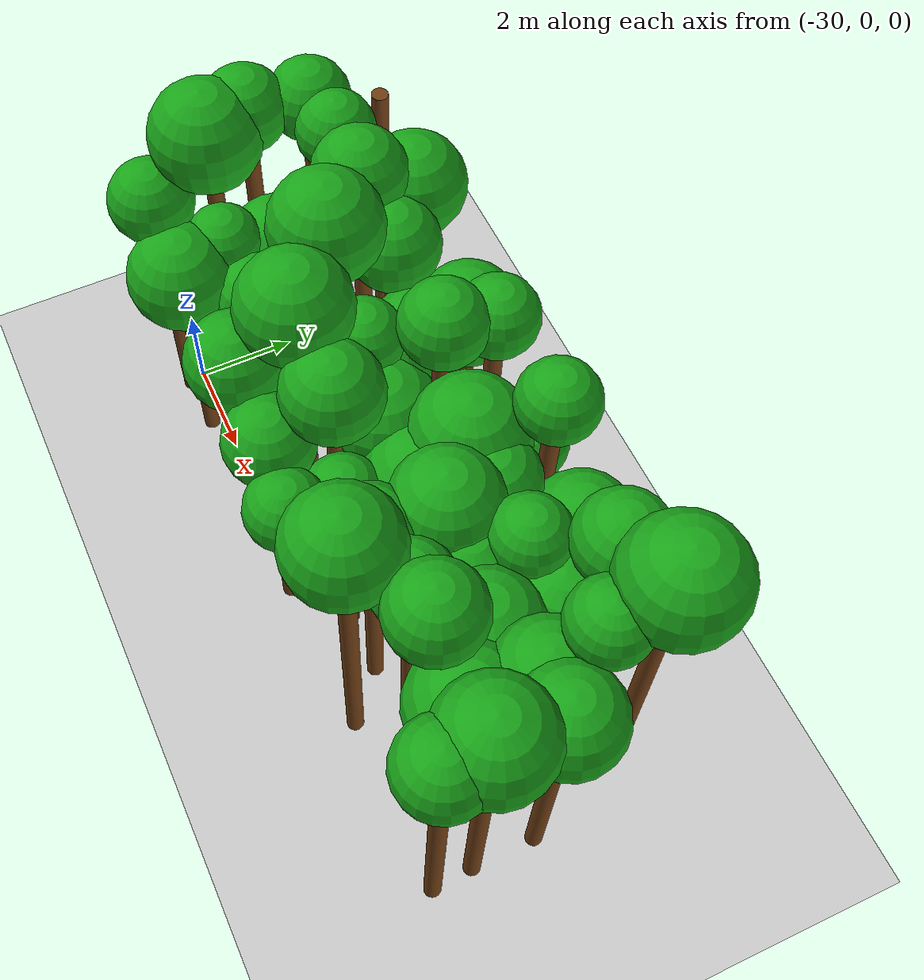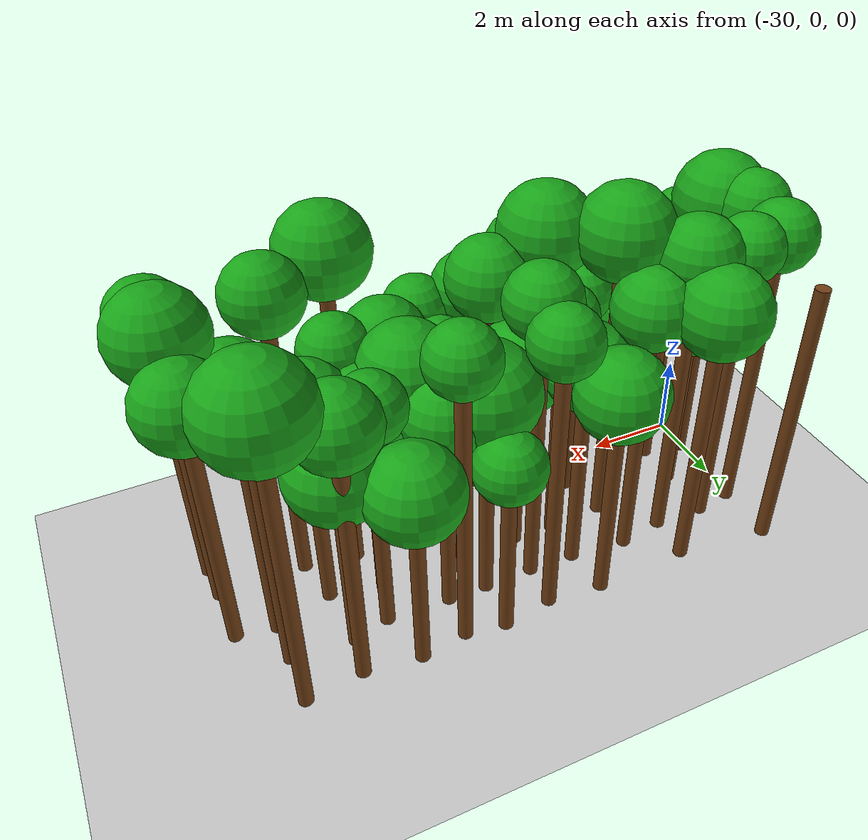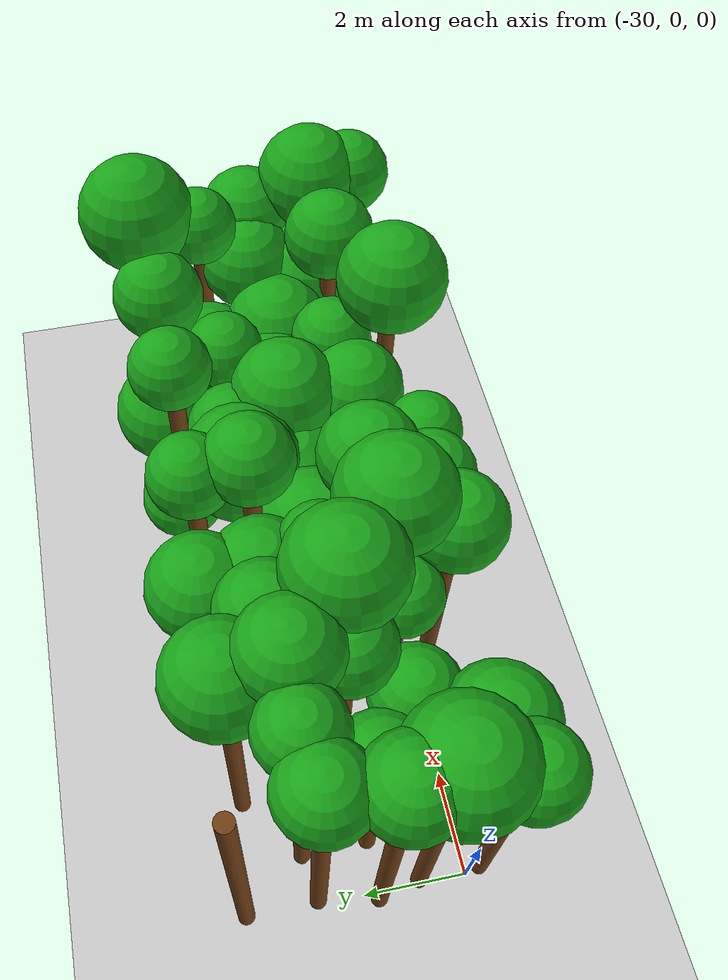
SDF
<sdf version="1.6">
 <world name="forest_world">
  <include><uri>model://sun</uri></include>
  <include><uri>model://ground_plane</uri></include>
  <model name="tree_27_trunk">
   <static>true</static>
   <pose>-29.89 -0.29 2.73 0 0 0</pose>
   <link name="link">
    <collision name="collision">
     <geometry><cylinder><radius>0.16</radius><length>5.46</length></cylinder></geometry>
    </collision>
    <visual name="visual">
     <geometry><cylinder><radius>0.16</radius><length>5.46</length></cylinder></geometry>
     <material><ambient>0.35 0.20 0.05 1</ambient><diffuse>0.45 0.25 0.08 1</diffuse></material>
    </visual>
   </link>
  </model>
  <model name="tree_27_leaf">
   <static>true</static>
   <pose>-29.89 -0.29 5.94 0 0 0</pose>
   <link name="link">
    <collision name="collision"><geometry><sphere><radius>0.80</radius></sphere></geometry></collision>
    <visual name="visual">
     <geometry><sphere><radius>0.80</radius></sphere></geometry>
     <material><ambient>0.05 0.45 0.05 1</ambient><diffuse>0.10 0.65 0.10 1</diffuse></material>
    </visual>
   </link>
  </model>
  <model name="tree_28_trunk">
   <static>true</static>
   <pose>-29.91 0.91 3.22 0 0 0</pose>
   <link name="link">
    <collision name="collision">
     <geometry><cylinder><radius>0.16</radius><length>6.43</length></cylinder></geometry>
    </collision>
    <visual name="visual">
     <geometry><cylinder><radius>0.16</radius><length>6.43</length></cylinder></geometry>
     <material><ambient>0.35 0.20 0.05 1</ambient><diffuse>0.45 0.25 0.08 1</diffuse></material>
    </visual>
   </link>
  </model>
  <model name="tree_28_leaf">
   <static>true</static>
   <pose>-29.91 0.91 7.06 0 0 0</pose>
   <link name="link">
    <collision name="collision"><geometry><sphere><radius>1.04</radius></sphere></geometry></collision>
    <visual name="visual">
     <geometry><sphere><radius>1.04</radius></sphere></geometry>
     <material><ambient>0.05 0.45 0.05 1</ambient><diffuse>0.10 0.65 0.10 1</diffuse></material>
    </visual>
   </link>
  </model>
  <model name="tree_29_trunk">
   <static>true</static>
   <pose>-30.10 1.73 3.36 0 0 0</pose>
   <link name="link">
    <collision name="collision">
     <geometry><cylinder><radius>0.16</radius><length>6.72</length></cylinder></geometry>
    </collision>
    <visual name="visual">
     <geometry><cylinder><radius>0.16</radius><length>6.72</length></cylinder></geometry>
     <material><ambient>0.35 0.20 0.05 1</ambient><diffuse>0.45 0.25 0.08 1</diffuse></material>
    </visual>
   </link>
  </model>
  <model name="tree_29_leaf">
   <static>true</static>
   <pose>-30.10 1.73 7.20 0 0 0</pose>
   <link name="link">
    <collision name="collision"><geometry><sphere><radius>0.80</radius></sphere></geometry></collision>
    <visual name="visual">
     <geometry><sphere><radius>0.80</radius></sphere></geometry>
     <material><ambient>0.05 0.45 0.05 1</ambient><diffuse>0.10 0.65 0.10 1</diffuse></material>
    </visual>
   </link>
  </model>
  <model name="tree_30_trunk">
   <static>true</static>
   <pose>-29.91 2.88 3.34 0 0 0</pose>
   <link name="link">
    <collision name="collision">
     <geometry><cylinder><radius>0.16</radius><length>6.68</length></cylinder></geometry>
    </collision>
    <visual name="visual">
     <geometry><cylinder><radius>0.16</radius><length>6.68</length></cylinder></geometry>
     <material><ambient>0.35 0.20 0.05 1</ambient><diffuse>0.45 0.25 0.08 1</diffuse></material>
    </visual>
   </link>
  </model>
  <model name="tree_30_leaf">
   <static>true</static>
   <pose>-29.91 2.88 7.13 0 0 0</pose>
   <link name="link">
    <collision name="collision"><geometry><sphere><radius>0.77</radius></sphere></geometry></collision>
    <visual name="visual">
     <geometry><sphere><radius>0.77</radius></sphere></geometry>
     <material><ambient>0.05 0.45 0.05 1</ambient><diffuse>0.10 0.65 0.10 1</diffuse></material>
    </visual>
   </link>
  </model>
  <model name="tree_31_trunk">
   <static>true</static>
   <pose>-29.92 4.26 3.33 0 0 0</pose>
   <link name="link">
    <collision name="collision">
     <geometry><cylinder><radius>0.16</radius><length>6.65</length></cylinder></geometry>
    </collision>
    <visual name="visual">
     <geometry><cylinder><radius>0.16</radius><length>6.65</length></cylinder></geometry>
     <material><ambient>0.35 0.20 0.05 1</ambient><diffuse>0.45 0.25 0.08 1</diffuse></material>
    </visual>
   </link>
  </model>
  <model name="tree_82_trunk">
   <static>true</static>
   <pose>-28.77 -0.24 2.21 0 0 0</pose>
   <link name="link">
    <collision name="collision">
     <geometry><cylinder><radius>0.16</radius><length>4.42</length></cylinder></geometry>
    </collision>
    <visual name="visual">
     <geometry><cylinder><radius>0.16</radius><length>4.42</length></cylinder></geometry>
     <material><ambient>0.35 0.20 0.05 1</ambient><diffuse>0.45 0.25 0.08 1</diffuse></material>
    </visual>
   </link>
  </model>
  <model name="tree_82_leaf">
   <static>true</static>
   <pose>-28.77 -0.24 5.02 0 0 0</pose>
   <link name="link">
    <collision name="collision"><geometry><sphere><radius>1.01</radius></sphere></geometry></collision>
    <visual name="visual">
     <geometry><sphere><radius>1.01</radius></sphere></geometry>
     <material><ambient>0.05 0.45 0.05 1</ambient><diffuse>0.10 0.65 0.10 1</diffuse></material>
    </visual>
   </link>
  </model>
  <model name="tree_83_trunk">
   <static>true</static>
   <pose>-28.99 0.70 2.42 0 0 0</pose>
   <link name="link">
    <collision name="collision">
     <geometry><cylinder><radius>0.16</radius><length>4.84</length></cylinder></geometry>
    </collision>
    <visual name="visual">
     <geometry><cylinder><radius>0.16</radius><length>4.84</length></cylinder></geometry>
     <material><ambient>0.35 0.20 0.05 1</ambient><diffuse>0.45 0.25 0.08 1</diffuse></material>
    </visual>
   </link>
  </model>
  <model name="tree_83_leaf">
   <static>true</static>
   <pose>-28.99 0.70 5.27 0 0 0</pose>
   <link name="link">
    <collision name="collision"><geometry><sphere><radius>0.72</radius></sphere></geometry></collision>
    <visual name="visual">
     <geometry><sphere><radius>0.72</radius></sphere></geometry>
     <material><ambient>0.05 0.45 0.05 1</ambient><diffuse>0.10 0.65 0.10 1</diffuse></material>
    </visual>
   </link>
  </model>
  <model name="tree_84_trunk">
   <static>true</static>
   <pose>-29.00 1.72 2.12 0 0 0</pose>
   <link name="link">
    <collision name="collision">
     <geometry><cylinder><radius>0.16</radius><length>4.25</length></cylinder></geometry>
    </collision>
    <visual name="visual">
     <geometry><cylinder><radius>0.16</radius><length>4.25</length></cylinder></geometry>
     <material><ambient>0.35 0.20 0.05 1</ambient><diffuse>0.45 0.25 0.08 1</diffuse></material>
    </visual>
   </link>
  </model>
  <model name="tree_84_leaf">
   <static>true</static>
   <pose>-29.00 1.72 4.78 0 0 0</pose>
   <link name="link">
    <collision name="collision"><geometry><sphere><radius>0.89</radius></sphere></geometry></collision>
    <visual name="visual">
     <geometry><sphere><radius>0.89</radius></sphere></geometry>
     <material><ambient>0.05 0.45 0.05 1</ambient><diffuse>0.10 0.65 0.10 1</diffuse></material>
    </visual>
   </link>
  </model>
  <model name="tree_85_trunk">
   <static>true</static>
   <pose>-29.03 3.02 3.34 0 0 0</pose>
   <link name="link">
    <collision name="collision">
     <geometry><cylinder><radius>0.16</radius><length>6.67</length></cylinder></geometry>
    </collision>
    <visual name="visual">
     <geometry><cylinder><radius>0.16</radius><length>6.67</length></cylinder></geometry>
     <material><ambient>0.35 0.20 0.05 1</ambient><diffuse>0.45 0.25 0.08 1</diffuse></material>
    </visual>
   </link>
  </model>
  <model name="tree_85_leaf">
   <static>true</static>
   <pose>-29.03 3.02 7.12 0 0 0</pose>
   <link name="link">
    <collision name="collision"><geometry><sphere><radius>0.73</radius></sphere></geometry></collision>
    <visual name="visual">
     <geometry><sphere><radius>0.73</radius></sphere></geometry>
     <material><ambient>0.05 0.45 0.05 1</ambient><diffuse>0.10 0.65 0.10 1</diffuse></material>
    </visual>
   </link>
  </model>
  <model name="tree_138_trunk">
   <static>true</static>
   <pose>-27.93 0.91 2.15 0 0 0</pose>
   <link name="link">
    <collision name="collision">
     <geometry><cylinder><radius>0.16</radius><length>4.29</length></cylinder></geometry>
    </collision>
    <visual name="visual">
     <geometry><cylinder><radius>0.16</radius><length>4.29</length></cylinder></geometry>
     <material><ambient>0.35 0.20 0.05 1</ambient><diffuse>0.45 0.25 0.08 1</diffuse></material>
    </visual>
   </link>
  </model>
  <model name="tree_138_leaf">
   <static>true</static>
   <pose>-27.93 0.91 4.79 0 0 0</pose>
   <link name="link">
    <collision name="collision"><geometry><sphere><radius>0.82</radius></sphere></geometry></collision>
    <visual name="visual">
     <geometry><sphere><radius>0.82</radius></sphere></geometry>
     <material><ambient>0.05 0.45 0.05 1</ambient><diffuse>0.10 0.65 0.10 1</diffuse></material>
    </visual>
   </link>
  </model>
  <model name="tree_139_trunk">
   <static>true</static>
   <pose>-27.67 2.04 3.02 0 0 0</pose>
   <link name="link">
    <collision name="collision">
     <geometry><cylinder><radius>0.16</radius><length>6.03</length></cylinder></geometry>
    </collision>
    <visual name="visual">
     <geometry><cylinder><radius>0.16</radius><length>6.03</length></cylinder></geometry>
     <material><ambient>0.35 0.20 0.05 1</ambient><diffuse>0.45 0.25 0.08 1</diffuse></material>
    </visual>
   </link>
  </model>
  <model name="tree_139_leaf">
   <static>true</static>
   <pose>-27.67 2.04 6.51 0 0 0</pose>
   <link name="link">
    <collision name="collision"><geometry><sphere><radius>0.80</radius></sphere></geometry></collision>
    <visual name="visual">
     <geometry><sphere><radius>0.80</radius></sphere></geometry>
     <material><ambient>0.05 0.45 0.05 1</ambient><diffuse>0.10 0.65 0.10 1</diffuse></material>
    </visual>
   </link>
  </model>
  <model name="tree_140_trunk">
   <static>true</static>
   <pose>-27.86 2.97 3.34 0 0 0</pose>
   <link name="link">
    <collision name="collision">
     <geometry><cylinder><radius>0.16</radius><length>6.68</length></cylinder></geometry>
    </collision>
    <visual name="visual">
     <geometry><cylinder><radius>0.16</radius><length>6.68</length></cylinder></geometry>
     <material><ambient>0.35 0.20 0.05 1</ambient><diffuse>0.45 0.25 0.08 1</diffuse></material>
    </visual>
   </link>
  </model>
  <model name="tree_140_leaf">
   <static>true</static>
   <pose>-27.86 2.97 7.20 0 0 0</pose>
   <link name="link">
    <collision name="collision"><geometry><sphere><radius>0.87</radius></sphere></geometry></collision>
    <visual name="visual">
     <geometry><sphere><radius>0.87</radius></sphere></geometry>
     <material><ambient>0.05 0.45 0.05 1</ambient><diffuse>0.10 0.65 0.10 1</diffuse></material>
    </visual>
   </link>
  </model>
  <model name="tree_141_trunk">
   <static>true</static>
   <pose>-27.81 3.98 2.98 0 0 0</pose>
   <link name="link">
    <collision name="collision">
     <geometry><cylinder><radius>0.16</radius><length>5.96</length></cylinder></geometry>
    </collision>
    <visual name="visual">
     <geometry><cylinder><radius>0.16</radius><length>5.96</length></cylinder></geometry>
     <material><ambient>0.35 0.20 0.05 1</ambient><diffuse>0.45 0.25 0.08 1</diffuse></material>
    </visual>
   </link>
  </model>
  <model name="tree_141_leaf">
   <static>true</static>
   <pose>-27.81 3.98 6.54 0 0 0</pose>
   <link name="link">
    <collision name="collision"><geometry><sphere><radius>0.96</radius></sphere></geometry></collision>
    <visual name="visual">
     <geometry><sphere><radius>0.96</radius></sphere></geometry>
     <material><ambient>0.05 0.45 0.05 1</ambient><diffuse>0.10 0.65 0.10 1</diffuse></material>
    </visual>
   </link>
  </model>
  <model name="tree_193_trunk">
   <static>true</static>
   <pose>-26.57 0.86 2.58 0 0 0</pose>
   <link name="link">
    <collision name="collision">
     <geometry><cylinder><radius>0.16</radius><length>5.17</length></cylinder></geometry>
    </collision>
    <visual name="visual">
     <geometry><cylinder><radius>0.16</radius><length>5.17</length></cylinder></geometry>
     <material><ambient>0.35 0.20 0.05 1</ambient><diffuse>0.45 0.25 0.08 1</diffuse></material>
    </visual>
   </link>
  </model>
  <model name="tree_193_leaf">
   <static>true</static>
   <pose>-26.57 0.86 5.61 0 0 0</pose>
   <link name="link">
    <collision name="collision"><geometry><sphere><radius>0.73</radius></sphere></geometry></collision>
    <visual name="visual">
     <geometry><sphere><radius>0.73</radius></sphere></geometry>
     <material><ambient>0.05 0.45 0.05 1</ambient><diffuse>0.10 0.65 0.10 1</diffuse></material>
    </visual>
   </link>
  </model>
  <model name="tree_194_trunk">
   <static>true</static>
   <pose>-26.84 1.92 3.42 0 0 0</pose>
   <link name="link">
    <collision name="collision">
     <geometry><cylinder><radius>0.16</radius><length>6.84</length></cylinder></geometry>
    </collision>
    <visual name="visual">
     <geometry><cylinder><radius>0.16</radius><length>6.84</length></cylinder></geometry>
     <material><ambient>0.35 0.20 0.05 1</ambient><diffuse>0.45 0.25 0.08 1</diffuse></material>
    </visual>
   </link>
  </model>
  <model name="tree_194_leaf">
   <static>true</static>
   <pose>-26.84 1.92 7.46 0 0 0</pose>
   <link name="link">
    <collision name="collision"><geometry><sphere><radius>1.02</radius></sphere></geometry></collision>
    <visual name="visual">
     <geometry><sphere><radius>1.02</radius></sphere></geometry>
     <material><ambient>0.05 0.45 0.05 1</ambient><diffuse>0.10 0.65 0.10 1</diffuse></material>
    </visual>
   </link>
  </model>
  <model name="tree_195_trunk">
   <static>true</static>
   <pose>-26.82 3.13 2.94 0 0 0</pose>
   <link name="link">
    <collision name="collision">
     <geometry><cylinder><radius>0.16</radius><length>5.89</length></cylinder></geometry>
    </collision>
    <visual name="visual">
     <geometry><cylinder><radius>0.16</radius><length>5.89</length></cylinder></geometry>
     <material><ambient>0.35 0.20 0.05 1</ambient><diffuse>0.45 0.25 0.08 1</diffuse></material>
    </visual>
   </link>
  </model>
  <model name="tree_195_leaf">
   <static>true</static>
   <pose>-26.82 3.13 6.41 0 0 0</pose>
   <link name="link">
    <collision name="collision"><geometry><sphere><radius>0.86</radius></sphere></geometry></collision>
    <visual name="visual">
     <geometry><sphere><radius>0.86</radius></sphere></geometry>
     <material><ambient>0.05 0.45 0.05 1</ambient><diffuse>0.10 0.65 0.10 1</diffuse></material>
    </visual>
   </link>
  </model>
  <model name="tree_247_trunk">
   <static>true</static>
   <pose>-25.76 -0.22 2.87 0 0 0</pose>
   <link name="link">
    <collision name="collision">
     <geometry><cylinder><radius>0.16</radius><length>5.74</length></cylinder></geometry>
    </collision>
    <visual name="visual">
     <geometry><cylinder><radius>0.16</radius><length>5.74</length></cylinder></geometry>
     <material><ambient>0.35 0.20 0.05 1</ambient><diffuse>0.45 0.25 0.08 1</diffuse></material>
    </visual>
   </link>
  </model>
  <model name="tree_247_leaf">
   <static>true</static>
   <pose>-25.76 -0.22 6.26 0 0 0</pose>
   <link name="link">
    <collision name="collision"><geometry><sphere><radius>0.88</radius></sphere></geometry></collision>
    <visual name="visual">
     <geometry><sphere><radius>0.88</radius></sphere></geometry>
     <material><ambient>0.05 0.45 0.05 1</ambient><diffuse>0.10 0.65 0.10 1</diffuse></material>
    </visual>
   </link>
  </model>
  <model name="tree_248_trunk">
   <static>true</static>
   <pose>-25.67 0.86 3.33 0 0 0</pose>
   <link name="link">
    <collision name="collision">
     <geometry><cylinder><radius>0.16</radius><length>6.66</length></cylinder></geometry>
    </collision>
    <visual name="visual">
     <geometry><cylinder><radius>0.16</radius><length>6.66</length></cylinder></geometry>
     <material><ambient>0.35 0.20 0.05 1</ambient><diffuse>0.45 0.25 0.08 1</diffuse></material>
    </visual>
   </link>
  </model>
  <model name="tree_248_leaf">
   <static>true</static>
   <pose>-25.67 0.86 7.27 0 0 0</pose>
   <link name="link">
    <collision name="collision"><geometry><sphere><radius>1.02</radius></sphere></geometry></collision>
    <visual name="visual">
     <geometry><sphere><radius>1.02</radius></sphere></geometry>
     <material><ambient>0.05 0.45 0.05 1</ambient><diffuse>0.10 0.65 0.10 1</diffuse></material>
    </visual>
   </link>
  </model>
  <model name="tree_249_trunk">
   <static>true</static>
   <pose>-25.53 2.00 2.74 0 0 0</pose>
   <link name="link">
    <collision name="collision">
     <geometry><cylinder><radius>0.16</radius><length>5.48</length></cylinder></geometry>
    </collision>
    <visual name="visual">
     <geometry><cylinder><radius>0.16</radius><length>5.48</length></cylinder></geometry>
     <material><ambient>0.35 0.20 0.05 1</ambient><diffuse>0.45 0.25 0.08 1</diffuse></material>
    </visual>
   </link>
  </model>
  <model name="tree_249_leaf">
   <static>true</static>
   <pose>-25.53 2.00 5.92 0 0 0</pose>
   <link name="link">
    <collision name="collision"><geometry><sphere><radius>0.73</radius></sphere></geometry></collision>
    <visual name="visual">
     <geometry><sphere><radius>0.73</radius></sphere></geometry>
     <material><ambient>0.05 0.45 0.05 1</ambient><diffuse>0.10 0.65 0.10 1</diffuse></material>
    </visual>
   </link>
  </model>
  <model name="tree_250_trunk">
   <static>true</static>
   <pose>-25.51 3.00 2.41 0 0 0</pose>
   <link name="link">
    <collision name="collision">
     <geometry><cylinder><radius>0.16</radius><length>4.81</length></cylinder></geometry>
    </collision>
    <visual name="visual">
     <geometry><cylinder><radius>0.16</radius><length>4.81</length></cylinder></geometry>
     <material><ambient>0.35 0.20 0.05 1</ambient><diffuse>0.45 0.25 0.08 1</diffuse></material>
    </visual>
   </link>
  </model>
  <model name="tree_250_leaf">
   <static>true</static>
   <pose>-25.51 3.00 5.37 0 0 0</pose>
   <link name="link">
    <collision name="collision"><geometry><sphere><radius>0.93</radius></sphere></geometry></collision>
    <visual name="visual">
     <geometry><sphere><radius>0.93</radius></sphere></geometry>
     <material><ambient>0.05 0.45 0.05 1</ambient><diffuse>0.10 0.65 0.10 1</diffuse></material>
    </visual>
   </link>
  </model>
  <model name="tree_251_trunk">
   <static>true</static>
   <pose>-25.64 4.05 2.39 0 0 0</pose>
   <link name="link">
    <collision name="collision">
     <geometry><cylinder><radius>0.16</radius><length>4.77</length></cylinder></geometry>
    </collision>
    <visual name="visual">
     <geometry><cylinder><radius>0.16</radius><length>4.77</length></cylinder></geometry>
     <material><ambient>0.35 0.20 0.05 1</ambient><diffuse>0.45 0.25 0.08 1</diffuse></material>
    </visual>
   </link>
  </model>
  <model name="tree_251_leaf">
   <static>true</static>
   <pose>-25.64 4.05 5.35 0 0 0</pose>
   <link name="link">
    <collision name="collision"><geometry><sphere><radius>0.96</radius></sphere></geometry></collision>
    <visual name="visual">
     <geometry><sphere><radius>0.96</radius></sphere></geometry>
     <material><ambient>0.05 0.45 0.05 1</ambient><diffuse>0.10 0.65 0.10 1</diffuse></material>
    </visual>
   </link>
  </model>
  <model name="tree_302_trunk">
   <static>true</static>
   <pose>-24.44 -0.19 2.59 0 0 0</pose>
   <link name="link">
    <collision name="collision">
     <geometry><cylinder><radius>0.16</radius><length>5.19</length></cylinder></geometry>
    </collision>
    <visual name="visual">
     <geometry><cylinder><radius>0.16</radius><length>5.19</length></cylinder></geometry>
     <material><ambient>0.35 0.20 0.05 1</ambient><diffuse>0.45 0.25 0.08 1</diffuse></material>
    </visual>
   </link>
  </model>
  <model name="tree_302_leaf">
   <static>true</static>
   <pose>-24.44 -0.19 5.68 0 0 0</pose>
   <link name="link">
    <collision name="collision"><geometry><sphere><radius>0.82</radius></sphere></geometry></collision>
    <visual name="visual">
     <geometry><sphere><radius>0.82</radius></sphere></geometry>
     <material><ambient>0.05 0.45 0.05 1</ambient><diffuse>0.10 0.65 0.10 1</diffuse></material>
    </visual>
   </link>
  </model>
  <model name="tree_303_trunk">
   <static>true</static>
   <pose>-24.36 0.94 3.00 0 0 0</pose>
   <link name="link">
    <collision name="collision">
     <geometry><cylinder><radius>0.16</radius><length>6.01</length></cylinder></geometry>
    </collision>
    <visual name="visual">
     <geometry><cylinder><radius>0.16</radius><length>6.01</length></cylinder></geometry>
     <material><ambient>0.35 0.20 0.05 1</ambient><diffuse>0.45 0.25 0.08 1</diffuse></material>
    </visual>
   </link>
  </model>
  <model name="tree_303_leaf">
   <static>true</static>
   <pose>-24.36 0.94 6.54 0 0 0</pose>
   <link name="link">
    <collision name="collision"><geometry><sphere><radius>0.90</radius></sphere></geometry></collision>
    <visual name="visual">
     <geometry><sphere><radius>0.90</radius></sphere></geometry>
     <material><ambient>0.05 0.45 0.05 1</ambient><diffuse>0.10 0.65 0.10 1</diffuse></material>
    </visual>
   </link>
  </model>
  <model name="tree_304_trunk">
   <static>true</static>
   <pose>-24.58 1.95 2.17 0 0 0</pose>
   <link name="link">
    <collision name="collision">
     <geometry><cylinder><radius>0.16</radius><length>4.34</length></cylinder></geometry>
    </collision>
    <visual name="visual">
     <geometry><cylinder><radius>0.16</radius><length>4.34</length></cylinder></geometry>
     <material><ambient>0.35 0.20 0.05 1</ambient><diffuse>0.45 0.25 0.08 1</diffuse></material>
    </visual>
   </link>
  </model>
  <model name="tree_304_leaf">
   <static>true</static>
   <pose>-24.58 1.95 4.96 0 0 0</pose>
   <link name="link">
    <collision name="collision"><geometry><sphere><radius>1.03</radius></sphere></geometry></collision>
    <visual name="visual">
     <geometry><sphere><radius>1.03</radius></sphere></geometry>
     <material><ambient>0.05 0.45 0.05 1</ambient><diffuse>0.10 0.65 0.10 1</diffuse></material>
    </visual>
   </link>
  </model>
  <model name="tree_305_trunk">
   <static>true</static>
   <pose>-24.47 2.96 3.32 0 0 0</pose>
   <link name="link">
    <collision name="collision">
     <geometry><cylinder><radius>0.16</radius><length>6.65</length></cylinder></geometry>
    </collision>
    <visual name="visual">
     <geometry><cylinder><radius>0.16</radius><length>6.65</length></cylinder></geometry>
     <material><ambient>0.35 0.20 0.05 1</ambient><diffuse>0.45 0.25 0.08 1</diffuse></material>
    </visual>
   </link>
  </model>
  <model name="tree_305_leaf">
   <static>true</static>
   <pose>-24.47 2.96 7.12 0 0 0</pose>
   <link name="link">
    <collision name="collision"><geometry><sphere><radius>0.78</radius></sphere></geometry></collision>
    <visual name="visual">
     <geometry><sphere><radius>0.78</radius></sphere></geometry>
     <material><ambient>0.05 0.45 0.05 1</ambient><diffuse>0.10 0.65 0.10 1</diffuse></material>
    </visual>
   </link>
  </model>
  <model name="tree_306_trunk">
   <static>true</static>
   <pose>-24.41 3.92 3.20 0 0 0</pose>
   <link name="link">
    <collision name="collision">
     <geometry><cylinder><radius>0.16</radius><length>6.41</length></cylinder></geometry>
    </collision>
    <visual name="visual">
     <geometry><cylinder><radius>0.16</radius><length>6.41</length></cylinder></geometry>
     <material><ambient>0.35 0.20 0.05 1</ambient><diffuse>0.45 0.25 0.08 1</diffuse></material>
    </visual>
   </link>
  </model>
  <model name="tree_306_leaf">
   <static>true</static>
   <pose>-24.41 3.92 6.85 0 0 0</pose>
   <link name="link">
    <collision name="collision"><geometry><sphere><radius>0.73</radius></sphere></geometry></collision>
    <visual name="visual">
     <geometry><sphere><radius>0.73</radius></sphere></geometry>
     <material><ambient>0.05 0.45 0.05 1</ambient><diffuse>0.10 0.65 0.10 1</diffuse></material>
    </visual>
   </link>
  </model>
  <model name="tree_357_leaf">
   <static>true</static>
   <pose>-23.30 -0.38 5.38 0 0 0</pose>
   <link name="link">
    <collision name="collision"><geometry><sphere><radius>0.73</radius></sphere></geometry></collision>
    <visual name="visual">
     <geometry><sphere><radius>0.73</radius></sphere></geometry>
     <material><ambient>0.05 0.45 0.05 1</ambient><diffuse>0.10 0.65 0.10 1</diffuse></material>
    </visual>
   </link>
  </model>
  <model name="tree_358_trunk">
   <static>true</static>
   <pose>-23.40 0.67 2.24 0 0 0</pose>
   <link name="link">
    <collision name="collision">
     <geometry><cylinder><radius>0.16</radius><length>4.48</length></cylinder></geometry>
    </collision>
    <visual name="visual">
     <geometry><cylinder><radius>0.16</radius><length>4.48</length></cylinder></geometry>
     <material><ambient>0.35 0.20 0.05 1</ambient><diffuse>0.45 0.25 0.08 1</diffuse></material>
    </visual>
   </link>
  </model>
  <model name="tree_358_leaf">
   <static>true</static>
   <pose>-23.40 0.67 4.92 0 0 0</pose>
   <link name="link">
    <collision name="collision"><geometry><sphere><radius>0.73</radius></sphere></geometry></collision>
    <visual name="visual">
     <geometry><sphere><radius>0.73</radius></sphere></geometry>
     <material><ambient>0.05 0.45 0.05 1</ambient><diffuse>0.10 0.65 0.10 1</diffuse></material>
    </visual>
   </link>
  </model>
  <model name="tree_359_trunk">
   <static>true</static>
   <pose>-23.23 2.05 2.03 0 0 0</pose>
   <link name="link">
    <collision name="collision">
     <geometry><cylinder><radius>0.16</radius><length>4.07</length></cylinder></geometry>
    </collision>
    <visual name="visual">
     <geometry><cylinder><radius>0.16</radius><length>4.07</length></cylinder></geometry>
     <material><ambient>0.35 0.20 0.05 1</ambient><diffuse>0.45 0.25 0.08 1</diffuse></material>
    </visual>
   </link>
  </model>
  <model name="tree_359_leaf">
   <static>true</static>
   <pose>-23.23 2.05 4.71 0 0 0</pose>
   <link name="link">
    <collision name="collision"><geometry><sphere><radius>1.07</radius></sphere></geometry></collision>
    <visual name="visual">
     <geometry><sphere><radius>1.07</radius></sphere></geometry>
     <material><ambient>0.05 0.45 0.05 1</ambient><diffuse>0.10 0.65 0.10 1</diffuse></material>
    </visual>
   </link>
  </model>
  <model name="tree_360_trunk">
   <static>true</static>
   <pose>-23.35 2.97 2.37 0 0 0</pose>
   <link name="link">
    <collision name="collision">
     <geometry><cylinder><radius>0.16</radius><length>4.74</length></cylinder></geometry>
    </collision>
    <visual name="visual">
     <geometry><cylinder><radius>0.16</radius><length>4.74</length></cylinder></geometry>
     <material><ambient>0.35 0.20 0.05 1</ambient><diffuse>0.45 0.25 0.08 1</diffuse></material>
    </visual>
   </link>
  </model>
  <model name="tree_360_leaf">
   <static>true</static>
   <pose>-23.35 2.97 5.39 0 0 0</pose>
   <link name="link">
    <collision name="collision"><geometry><sphere><radius>1.09</radius></sphere></geometry></collision>
    <visual name="visual">
     <geometry><sphere><radius>1.09</radius></sphere></geometry>
     <material><ambient>0.05 0.45 0.05 1</ambient><diffuse>0.10 0.65 0.10 1</diffuse></material>
    </visual>
   </link>
  </model>
  <model name="tree_361_trunk">
   <static>true</static>
   <pose>-23.28 4.09 2.01 0 0 0</pose>
   <link name="link">
    <collision name="collision">
     <geometry><cylinder><radius>0.16</radius><length>4.03</length></cylinder></geometry>
    </collision>
    <visual name="visual">
     <geometry><cylinder><radius>0.16</radius><length>4.03</length></cylinder></geometry>
     <material><ambient>0.35 0.20 0.05 1</ambient><diffuse>0.45 0.25 0.08 1</diffuse></material>
    </visual>
   </link>
  </model>
  <model name="tree_361_leaf">
   <static>true</static>
   <pose>-23.28 4.09 4.48 0 0 0</pose>
   <link name="link">
    <collision name="collision"><geometry><sphere><radius>0.75</radius></sphere></geometry></collision>
    <visual name="visual">
     <geometry><sphere><radius>0.75</radius></sphere></geometry>
     <material><ambient>0.05 0.45 0.05 1</ambient><diffuse>0.10 0.65 0.10 1</diffuse></material>
    </visual>
   </link>
  </model>
  <model name="tree_413_trunk">
   <static>true</static>
   <pose>-22.20 0.65 2.48 0 0 0</pose>
   <link name="link">
    <collision name="collision">
     <geometry><cylinder><radius>0.16</radius><length>4.96</length></cylinder></geometry>
    </collision>
    <visual name="visual">
     <geometry><cylinder><radius>0.16</radius><length>4.96</length></cylinder></geometry>
     <material><ambient>0.35 0.20 0.05 1</ambient><diffuse>0.45 0.25 0.08 1</diffuse></material>
    </visual>
   </link>
  </model>
  <model name="tree_413_leaf">
   <static>true</static>
   <pose>-22.20 0.65 5.51 0 0 0</pose>
   <link name="link">
    <collision name="collision"><geometry><sphere><radius>0.92</radius></sphere></geometry></collision>
    <visual name="visual">
     <geometry><sphere><radius>0.92</radius></sphere></geometry>
     <material><ambient>0.05 0.45 0.05 1</ambient><diffuse>0.10 0.65 0.10 1</diffuse></material>
    </visual>
   </link>
  </model>
  <model name="tree_414_trunk">
   <static>true</static>
   <pose>-22.16 1.96 2.54 0 0 0</pose>
   <link name="link">
    <collision name="collision">
     <geometry><cylinder><radius>0.16</radius><length>5.09</length></cylinder></geometry>
    </collision>
    <visual name="visual">
     <geometry><cylinder><radius>0.16</radius><length>5.09</length></cylinder></geometry>
     <material><ambient>0.35 0.20 0.05 1</ambient><diffuse>0.45 0.25 0.08 1</diffuse></material>
    </visual>
   </link>
  </model>
  <model name="tree_414_leaf">
   <static>true</static>
   <pose>-22.16 1.96 5.69 0 0 0</pose>
   <link name="link">
    <collision name="collision"><geometry><sphere><radius>1.00</radius></sphere></geometry></collision>
    <visual name="visual">
     <geometry><sphere><radius>1.00</radius></sphere></geometry>
     <material><ambient>0.05 0.45 0.05 1</ambient><diffuse>0.10 0.65 0.10 1</diffuse></material>
    </visual>
   </link>
  </model>
  <model name="tree_415_trunk">
   <static>true</static>
   <pose>-22.47 2.96 2.34 0 0 0</pose>
   <link name="link">
    <collision name="collision">
     <geometry><cylinder><radius>0.16</radius><length>4.67</length></cylinder></geometry>
    </collision>
    <visual name="visual">
     <geometry><cylinder><radius>0.16</radius><length>4.67</length></cylinder></geometry>
     <material><ambient>0.35 0.20 0.05 1</ambient><diffuse>0.45 0.25 0.08 1</diffuse></material>
    </visual>
   </link>
  </model>
  <model name="tree_415_leaf">
   <static>true</static>
   <pose>-22.47 2.96 5.20 0 0 0</pose>
   <link name="link">
    <collision name="collision"><geometry><sphere><radius>0.88</radius></sphere></geometry></collision>
    <visual name="visual">
     <geometry><sphere><radius>0.88</radius></sphere></geometry>
     <material><ambient>0.05 0.45 0.05 1</ambient><diffuse>0.10 0.65 0.10 1</diffuse></material>
    </visual>
   </link>
  </model>
  <model name="tree_416_trunk">
   <static>true</static>
   <pose>-22.40 3.95 3.34 0 0 0</pose>
   <link name="link">
    <collision name="collision">
     <geometry><cylinder><radius>0.16</radius><length>6.69</length></cylinder></geometry>
    </collision>
    <visual name="visual">
     <geometry><cylinder><radius>0.16</radius><length>6.69</length></cylinder></geometry>
     <material><ambient>0.35 0.20 0.05 1</ambient><diffuse>0.45 0.25 0.08 1</diffuse></material>
    </visual>
   </link>
  </model>
  <model name="tree_416_leaf">
   <static>true</static>
   <pose>-22.40 3.95 7.12 0 0 0</pose>
   <link name="link">
    <collision name="collision"><geometry><sphere><radius>0.72</radius></sphere></geometry></collision>
    <visual name="visual">
     <geometry><sphere><radius>0.72</radius></sphere></geometry>
     <material><ambient>0.05 0.45 0.05 1</ambient><diffuse>0.10 0.65 0.10 1</diffuse></material>
    </visual>
   </link>
  </model>
  <model name="tree_467_trunk">
   <static>true</static>
   <pose>-21.35 -0.14 3.38 0 0 0</pose>
   <link name="link">
    <collision name="collision">
     <geometry><cylinder><radius>0.16</radius><length>6.77</length></cylinder></geometry>
    </collision>
    <visual name="visual">
     <geometry><cylinder><radius>0.16</radius><length>6.77</length></cylinder></geometry>
     <material><ambient>0.35 0.20 0.05 1</ambient><diffuse>0.45 0.25 0.08 1</diffuse></material>
    </visual>
   </link>
  </model>
  <model name="tree_467_leaf">
   <static>true</static>
   <pose>-21.35 -0.14 7.36 0 0 0</pose>
   <link name="link">
    <collision name="collision"><geometry><sphere><radius>0.99</radius></sphere></geometry></collision>
    <visual name="visual">
     <geometry><sphere><radius>0.99</radius></sphere></geometry>
     <material><ambient>0.05 0.45 0.05 1</ambient><diffuse>0.10 0.65 0.10 1</diffuse></material>
    </visual>
   </link>
  </model>
  <model name="tree_468_trunk">
   <static>true</static>
   <pose>-21.10 0.86 2.64 0 0 0</pose>
   <link name="link">
    <collision name="collision">
     <geometry><cylinder><radius>0.16</radius><length>5.28</length></cylinder></geometry>
    </collision>
    <visual name="visual">
     <geometry><cylinder><radius>0.16</radius><length>5.28</length></cylinder></geometry>
     <material><ambient>0.35 0.20 0.05 1</ambient><diffuse>0.45 0.25 0.08 1</diffuse></material>
    </visual>
   </link>
  </model>
  <model name="tree_468_leaf">
   <static>true</static>
   <pose>-21.10 0.86 5.74 0 0 0</pose>
   <link name="link">
    <collision name="collision"><geometry><sphere><radius>0.76</radius></sphere></geometry></collision>
    <visual name="visual">
     <geometry><sphere><radius>0.76</radius></sphere></geometry>
     <material><ambient>0.05 0.45 0.05 1</ambient><diffuse>0.10 0.65 0.10 1</diffuse></material>
    </visual>
   </link>
  </model>
  <model name="tree_469_trunk">
   <static>true</static>
   <pose>-21.32 1.99 2.28 0 0 0</pose>
   <link name="link">
    <collision name="collision">
     <geometry><cylinder><radius>0.16</radius><length>4.55</length></cylinder></geometry>
    </collision>
    <visual name="visual">
     <geometry><cylinder><radius>0.16</radius><length>4.55</length></cylinder></geometry>
     <material><ambient>0.35 0.20 0.05 1</ambient><diffuse>0.45 0.25 0.08 1</diffuse></material>
    </visual>
   </link>
  </model>
  <model name="tree_469_leaf">
   <static>true</static>
   <pose>-21.32 1.99 5.09 0 0 0</pose>
   <link name="link">
    <collision name="collision"><geometry><sphere><radius>0.89</radius></sphere></geometry></collision>
    <visual name="visual">
     <geometry><sphere><radius>0.89</radius></sphere></geometry>
     <material><ambient>0.05 0.45 0.05 1</ambient><diffuse>0.10 0.65 0.10 1</diffuse></material>
    </visual>
   </link>
  </model>
  <model name="tree_470_trunk">
   <static>true</static>
   <pose>-21.06 2.89 2.68 0 0 0</pose>
   <link name="link">
    <collision name="collision">
     <geometry><cylinder><radius>0.16</radius><length>5.36</length></cylinder></geometry>
    </collision>
    <visual name="visual">
     <geometry><cylinder><radius>0.16</radius><length>5.36</length></cylinder></geometry>
     <material><ambient>0.35 0.20 0.05 1</ambient><diffuse>0.45 0.25 0.08 1</diffuse></material>
    </visual>
   </link>
  </model>
  <model name="tree_470_leaf">
   <static>true</static>
   <pose>-21.06 2.89 5.79 0 0 0</pose>
   <link name="link">
    <collision name="collision"><geometry><sphere><radius>0.72</radius></sphere></geometry></collision>
    <visual name="visual">
     <geometry><sphere><radius>0.72</radius></sphere></geometry>
     <material><ambient>0.05 0.45 0.05 1</ambient><diffuse>0.10 0.65 0.10 1</diffuse></material>
    </visual>
   </link>
  </model>
  <model name="tree_471_trunk">
   <static>true</static>
   <pose>-21.36 4.10 2.02 0 0 0</pose>
   <link name="link">
    <collision name="collision">
     <geometry><cylinder><radius>0.16</radius><length>4.04</length></cylinder></geometry>
    </collision>
    <visual name="visual">
     <geometry><cylinder><radius>0.16</radius><length>4.04</length></cylinder></geometry>
     <material><ambient>0.35 0.20 0.05 1</ambient><diffuse>0.45 0.25 0.08 1</diffuse></material>
    </visual>
   </link>
  </model>
  <model name="tree_471_leaf">
   <static>true</static>
   <pose>-21.36 4.10 4.63 0 0 0</pose>
   <link name="link">
    <collision name="collision"><geometry><sphere><radius>0.99</radius></sphere></geometry></collision>
    <visual name="visual">
     <geometry><sphere><radius>0.99</radius></sphere></geometry>
     <material><ambient>0.05 0.45 0.05 1</ambient><diffuse>0.10 0.65 0.10 1</diffuse></material>
    </visual>
   </link>
  </model>
  <model name="tree_523_trunk">
   <static>true</static>
   <pose>-19.93 0.68 3.35 0 0 0</pose>
   <link name="link">
    <collision name="collision">
     <geometry><cylinder><radius>0.16</radius><length>6.71</length></cylinder></geometry>
    </collision>
    <visual name="visual">
     <geometry><cylinder><radius>0.16</radius><length>6.71</length></cylinder></geometry>
     <material><ambient>0.35 0.20 0.05 1</ambient><diffuse>0.45 0.25 0.08 1</diffuse></material>
    </visual>
   </link>
  </model>
  <model name="tree_523_leaf">
   <static>true</static>
   <pose>-19.93 0.68 7.20 0 0 0</pose>
   <link name="link">
    <collision name="collision"><geometry><sphere><radius>0.82</radius></sphere></geometry></collision>
    <visual name="visual">
     <geometry><sphere><radius>0.82</radius></sphere></geometry>
     <material><ambient>0.05 0.45 0.05 1</ambient><diffuse>0.10 0.65 0.10 1</diffuse></material>
    </visual>
   </link>
  </model>
  <model name="tree_524_trunk">
   <static>true</static>
   <pose>-20.16 1.72 2.31 0 0 0</pose>
   <link name="link">
    <collision name="collision">
     <geometry><cylinder><radius>0.16</radius><length>4.62</length></cylinder></geometry>
    </collision>
    <visual name="visual">
     <geometry><cylinder><radius>0.16</radius><length>4.62</length></cylinder></geometry>
     <material><ambient>0.35 0.20 0.05 1</ambient><diffuse>0.45 0.25 0.08 1</diffuse></material>
    </visual>
   </link>
  </model>
  <model name="tree_524_leaf">
   <static>true</static>
   <pose>-20.16 1.72 5.22 0 0 0</pose>
   <link name="link">
    <collision name="collision"><geometry><sphere><radius>1.00</radius></sphere></geometry></collision>
    <visual name="visual">
     <geometry><sphere><radius>1.00</radius></sphere></geometry>
     <material><ambient>0.05 0.45 0.05 1</ambient><diffuse>0.10 0.65 0.10 1</diffuse></material>
    </visual>
   </link>
  </model>
  <model name="tree_525_trunk">
   <static>true</static>
   <pose>-20.26 3.12 2.08 0 0 0</pose>
   <link name="link">
    <collision name="collision">
     <geometry><cylinder><radius>0.16</radius><length>4.15</length></cylinder></geometry>
    </collision>
    <visual name="visual">
     <geometry><cylinder><radius>0.16</radius><length>4.15</length></cylinder></geometry>
     <material><ambient>0.35 0.20 0.05 1</ambient><diffuse>0.45 0.25 0.08 1</diffuse></material>
    </visual>
   </link>
  </model>
  <model name="tree_525_leaf">
   <static>true</static>
   <pose>-20.26 3.12 4.77 0 0 0</pose>
   <link name="link">
    <collision name="collision"><geometry><sphere><radius>1.04</radius></sphere></geometry></collision>
    <visual name="visual">
     <geometry><sphere><radius>1.04</radius></sphere></geometry>
     <material><ambient>0.05 0.45 0.05 1</ambient><diffuse>0.10 0.65 0.10 1</diffuse></material>
    </visual>
   </link>
  </model>
  <model name="tree_526_trunk">
   <static>true</static>
   <pose>-20.12 3.93 2.99 0 0 0</pose>
   <link name="link">
    <collision name="collision">
     <geometry><cylinder><radius>0.16</radius><length>5.98</length></cylinder></geometry>
    </collision>
    <visual name="visual">
     <geometry><cylinder><radius>0.16</radius><length>5.98</length></cylinder></geometry>
     <material><ambient>0.35 0.20 0.05 1</ambient><diffuse>0.45 0.25 0.08 1</diffuse></material>
    </visual>
   </link>
  </model>
  <model name="tree_526_leaf">
   <static>true</static>
   <pose>-20.12 3.93 6.48 0 0 0</pose>
   <link name="link">
    <collision name="collision"><geometry><sphere><radius>0.84</radius></sphere></geometry></collision>
    <visual name="visual">
     <geometry><sphere><radius>0.84</radius></sphere></geometry>
     <material><ambient>0.05 0.45 0.05 1</ambient><diffuse>0.10 0.65 0.10 1</diffuse></material>
    </visual>
   </link>
  </model>
  <model name="tree_578_trunk">
   <static>true</static>
   <pose>-19.04 0.87 2.38 0 0 0</pose>
   <link name="link">
    <collision name="collision">
     <geometry><cylinder><radius>0.16</radius><length>4.77</length></cylinder></geometry>
    </collision>
    <visual name="visual">
     <geometry><cylinder><radius>0.16</radius><length>4.77</length></cylinder></geometry>
     <material><ambient>0.35 0.20 0.05 1</ambient><diffuse>0.45 0.25 0.08 1</diffuse></material>
    </visual>
   </link>
  </model>
  <model name="tree_578_leaf">
   <static>true</static>
   <pose>-19.04 0.87 5.41 0 0 0</pose>
   <link name="link">
    <collision name="collision"><geometry><sphere><radius>1.06</radius></sphere></geometry></collision>
    <visual name="visual">
     <geometry><sphere><radius>1.06</radius></sphere></geometry>
     <material><ambient>0.05 0.45 0.05 1</ambient><diffuse>0.10 0.65 0.10 1</diffuse></material>
    </visual>
   </link>
  </model>
  <model name="tree_579_trunk">
   <static>true</static>
   <pose>-18.88 2.08 2.61 0 0 0</pose>
   <link name="link">
    <collision name="collision">
     <geometry><cylinder><radius>0.16</radius><length>5.22</length></cylinder></geometry>
    </collision>
    <visual name="visual">
     <geometry><cylinder><radius>0.16</radius><length>5.22</length></cylinder></geometry>
     <material><ambient>0.35 0.20 0.05 1</ambient><diffuse>0.45 0.25 0.08 1</diffuse></material>
    </visual>
   </link>
  </model>
  <model name="tree_579_leaf">
   <static>true</static>
   <pose>-18.88 2.08 5.78 0 0 0</pose>
   <link name="link">
    <collision name="collision"><geometry><sphere><radius>0.93</radius></sphere></geometry></collision>
    <visual name="visual">
     <geometry><sphere><radius>0.93</radius></sphere></geometry>
     <material><ambient>0.05 0.45 0.05 1</ambient><diffuse>0.10 0.65 0.10 1</diffuse></material>
    </visual>
   </link>
  </model>
  <model name="tree_580_trunk">
   <static>true</static>
   <pose>-18.89 2.98 3.21 0 0 0</pose>
   <link name="link">
    <collision name="collision">
     <geometry><cylinder><radius>0.16</radius><length>6.42</length></cylinder></geometry>
    </collision>
    <visual name="visual">
     <geometry><cylinder><radius>0.16</radius><length>6.42</length></cylinder></geometry>
     <material><ambient>0.35 0.20 0.05 1</ambient><diffuse>0.45 0.25 0.08 1</diffuse></material>
    </visual>
   </link>
  </model>
  <model name="tree_580_leaf">
   <static>true</static>
   <pose>-18.89 2.98 6.86 0 0 0</pose>
   <link name="link">
    <collision name="collision"><geometry><sphere><radius>0.72</radius></sphere></geometry></collision>
    <visual name="visual">
     <geometry><sphere><radius>0.72</radius></sphere></geometry>
     <material><ambient>0.05 0.45 0.05 1</ambient><diffuse>0.10 0.65 0.10 1</diffuse></material>
    </visual>
   </link>
  </model>
  <model name="tree_581_trunk">
   <static>true</static>
   <pose>-18.86 4.07 3.35 0 0 0</pose>
   <link name="link">
    <collision name="collision">
     <geometry><cylinder><radius>0.16</radius><length>6.71</length></cylinder></geometry>
    </collision>
    <visual name="visual">
     <geometry><cylinder><radius>0.16</radius><length>6.71</length></cylinder></geometry>
     <material><ambient>0.35 0.20 0.05 1</ambient><diffuse>0.45 0.25 0.08 1</diffuse></material>
    </visual>
   </link>
  </model>
  <model name="tree_581_leaf">
   <static>true</static>
   <pose>-18.86 4.07 7.34 0 0 0</pose>
   <link name="link">
    <collision name="collision"><geometry><sphere><radius>1.06</radius></sphere></geometry></collision>
    <visual name="visual">
     <geometry><sphere><radius>1.06</radius></sphere></geometry>
     <material><ambient>0.05 0.45 0.05 1</ambient><diffuse>0.10 0.65 0.10 1</diffuse></material>
    </visual>
   </link>
  </model>
  <model name="tree_632_trunk">
   <static>true</static>
   <pose>-17.94 -0.13 3.17 0 0 0</pose>
   <link name="link">
    <collision name="collision">
     <geometry><cylinder><radius>0.16</radius><length>6.35</length></cylinder></geometry>
    </collision>
    <visual name="visual">
     <geometry><cylinder><radius>0.16</radius><length>6.35</length></cylinder></geometry>
     <material><ambient>0.35 0.20 0.05 1</ambient><diffuse>0.45 0.25 0.08 1</diffuse></material>
    </visual>
   </link>
  </model>
  <model name="tree_632_leaf">
   <static>true</static>
   <pose>-17.94 -0.13 6.82 0 0 0</pose>
   <link name="link">
    <collision name="collision"><geometry><sphere><radius>0.79</radius></sphere></geometry></collision>
    <visual name="visual">
     <geometry><sphere><radius>0.79</radius></sphere></geometry>
     <material><ambient>0.05 0.45 0.05 1</ambient><diffuse>0.10 0.65 0.10 1</diffuse></material>
    </visual>
   </link>
  </model>
  <model name="tree_633_trunk">
   <static>true</static>
   <pose>-17.99 0.67 3.14 0 0 0</pose>
   <link name="link">
    <collision name="collision">
     <geometry><cylinder><radius>0.16</radius><length>6.28</length></cylinder></geometry>
    </collision>
    <visual name="visual">
     <geometry><cylinder><radius>0.16</radius><length>6.28</length></cylinder></geometry>
     <material><ambient>0.35 0.20 0.05 1</ambient><diffuse>0.45 0.25 0.08 1</diffuse></material>
    </visual>
   </link>
  </model>
  <model name="tree_633_leaf">
   <static>true</static>
   <pose>-17.99 0.67 6.88 0 0 0</pose>
   <link name="link">
    <collision name="collision"><geometry><sphere><radius>0.99</radius></sphere></geometry></collision>
    <visual name="visual">
     <geometry><sphere><radius>0.99</radius></sphere></geometry>
     <material><ambient>0.05 0.45 0.05 1</ambient><diffuse>0.10 0.65 0.10 1</diffuse></material>
    </visual>
   </link>
  </model>
  <model name="tree_634_trunk">
   <static>true</static>
   <pose>-18.01 1.93 2.82 0 0 0</pose>
   <link name="link">
    <collision name="collision">
     <geometry><cylinder><radius>0.16</radius><length>5.64</length></cylinder></geometry>
    </collision>
    <visual name="visual">
     <geometry><cylinder><radius>0.16</radius><length>5.64</length></cylinder></geometry>
     <material><ambient>0.35 0.20 0.05 1</ambient><diffuse>0.45 0.25 0.08 1</diffuse></material>
    </visual>
   </link>
  </model>
  <model name="tree_634_leaf">
   <static>true</static>
   <pose>-18.01 1.93 6.19 0 0 0</pose>
   <link name="link">
    <collision name="collision"><geometry><sphere><radius>0.91</radius></sphere></geometry></collision>
    <visual name="visual">
     <geometry><sphere><radius>0.91</radius></sphere></geometry>
     <material><ambient>0.05 0.45 0.05 1</ambient><diffuse>0.10 0.65 0.10 1</diffuse></material>
    </visual>
   </link>
  </model>
 </world>
</sdf>
